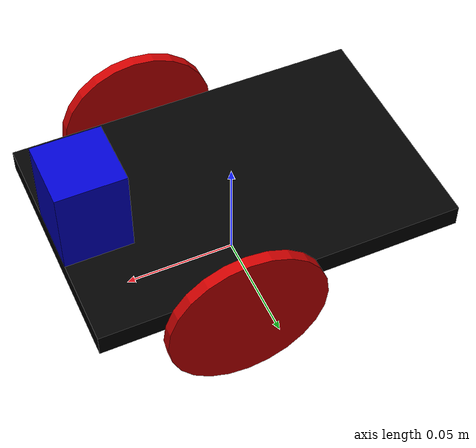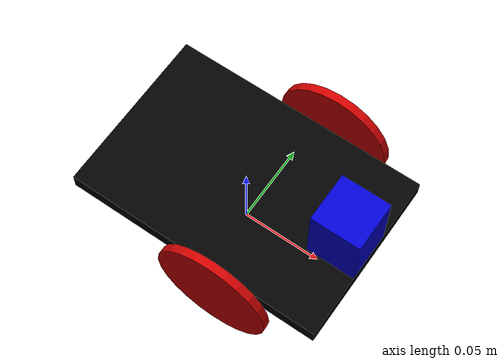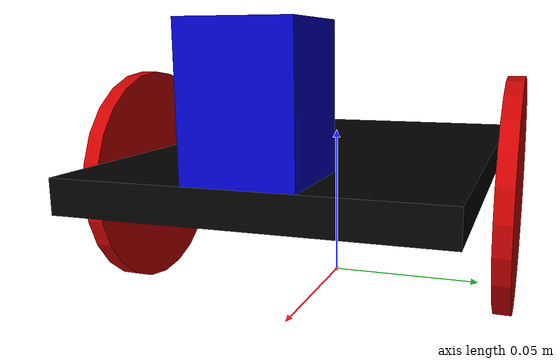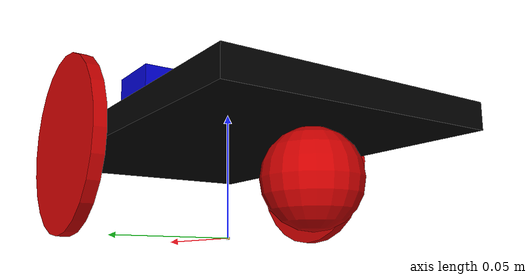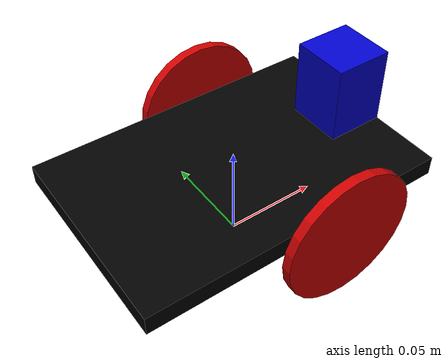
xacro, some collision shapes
<?xml version="1.0"?>
<robot xmlns:xacro="http://www.ros.org/wiki/xacro" name="newlucas">
<xacro:include filename="$(find newlucas)/urdf/pbot.gazebo" />

  <xacro:property name="base_width" value="0.106"/>
  <xacro:property name="base_len" value="0.16"/>
  <xacro:property name="wheel_radius" value="0.035"/>
  <xacro:property name="base_wheel_gap" value="0.007"/>
  <xacro:property name="wheel_separation" value="0.12"/>
  <xacro:property name="wheel_joint_offset" value="0.02"/>

  <xacro:property name="caster_wheel_radius" value="${wheel_radius/2}"/>
  <xacro:property name="caster_wheel_mass" value="0.001"/>
  <xacro:property name="caster_wheel_joint_offset" value="-0.052"/>

  <xacro:property name="laser_size_x" value="0.03"/>
  <xacro:property name="laser_size_y" value="0.03"/>
  <xacro:property name="laser_size_z" value="0.04"/>
  <xacro:property name="laser_origin_x" value="0.065"/>
  <xacro:property name="laser_origin_y" value="0"/>
  <xacro:property name="laser_origin_z" value="0.025"/>

  <xacro:property name="camera_size" value="0.02"/>
  <xacro:property name="camera_origin_x" value="0.065"/>
  <xacro:property name="camera_origin_y" value="0"/>
  <xacro:property name="camera_origin_z" value="0.025"/>

  <material name="blue">
    <color rgba="0 0 0.8 1"/>
  </material>
  <material name="black">
    <color rgba="0 0 0 1"/>
  </material>
  <material name="white">
    <color rgba="1 1 1 1"/>
  </material>
  <material name="red">
    <color rgba="0.8 0.0 0.0 1.0"/>
  </material>

  <xacro:macro name="default_inertial" params="mass">
    <inertial>
      <mass value="${mass}"/>
      <inertia ixx="1.0" ixy="0.0" ixz="0.0" iyy="1.0" iyz="0.0" izz="1.0"/>
    </inertial>
  </xacro:macro>

  <xacro:macro name="cylinder_inertia" params="m r h">
    <inertial>
      <mass value="${m}"/>
      <inertia ixx="${m*(3*r*r+h*h)/12}" ixy = "0" ixz = "0" iyy="${m*(3*r*r+h*h)/12}" iyz = "0" izz="${m*r*r/2}"/>
    </inertial>
  </xacro:macro>

  <xacro:macro name="box_inertia" params="m w h d">
    <inertial>
      <mass value="${m}"/>
      <inertia ixx="${m / 12.0 * (d*d + h*h)}" ixy="0.0" ixz="0.0" iyy="${m / 12.0 * (w*w + h*h)}" iyz="0.0" izz="${m / 12.0 * (w*w + d*d)}"/>
    </inertial>
  </xacro:macro>

  <xacro:macro name="sphere_inertia" params="m r">
    <inertial>
      <mass value="${m}"/>
      <inertia ixx="${2.0*m*(r*r)/5.0}" ixy="0.0" ixz="0.0" iyy="${2.0*m*(r*r)/5.0}" iyz="0.0" izz="${2.0*m*(r*r)/5.0}"/>
    </inertial>
  </xacro:macro>

  <link name="base_footprint">
    <xacro:box_inertia m="200" w="0.001" h="0.001" d="0.001"/>
    <visual>
        <origin xyz="0 0 0" rpy="0 0 0" />
        <geometry>
            <box size="0.001 0.001 0.001" />
        </geometry>
    </visual>
  </link>

  <link name="base_link">
    <xacro:box_inertia m="10" w="${base_len}" h="${base_width}" d="0.01"/>
    <visual>
      <geometry>
        <box size="${base_len} ${base_width} 0.01"/>
      </geometry>
      <material name="black"/>
    </visual>
    <collision>
      <geometry>
        <box size="${base_len} ${base_width} 0.01"/>
      </geometry>
    </collision>
  </link>

  <joint name="base_link_joint" type="fixed">
    <origin xyz="0 0 ${wheel_radius + 0.005}" rpy="0 0 0" />
    <parent link="base_footprint"/>
    <child link="base_link" />
  </joint>

  <xacro:macro name="wheel" params="prefix reflect">
    <link name="${prefix}_wheel">
      <visual>
        <origin xyz="0 0 0" rpy="${pi/2} 0 0"/>
        <geometry>
          <cylinder radius="${wheel_radius}" length="0.005"/>
        </geometry>
        <material name="red"/>
      </visual>
      <collision>
        <origin xyz="0 0 0" rpy="${pi/2} 0 0"/>
        <geometry>
          <cylinder radius="${wheel_radius}" length="0.005"/>
        </geometry>
      </collision>
      <xacro:cylinder_inertia m="10" r="${wheel_radius}" h="0.005"/>
    </link>

    <joint name="${prefix}_wheel_joint" type="continuous">
      <axis xyz="0 1 0" rpy="0 0 0" />
      <parent link="base_link"/>
      <child link="${prefix}_wheel"/>
      <origin xyz="${wheel_joint_offset} ${((base_width/2)+base_wheel_gap)*reflect} -0.005" rpy="0 0 0"/>
    </joint>
  </xacro:macro>

  <xacro:wheel prefix="left" reflect="1"/>
  <xacro:wheel prefix="right" reflect="-1"/>

  <!--Caster Wheel-->
  <link name="caster_wheel">
    <visual>
      <origin xyz="0 0 0" rpy="0 0 0"/>
      <geometry>
        <sphere radius="${caster_wheel_radius}"/>
      </geometry>
      <material name="red"/>
    </visual>
    <collision>
      <origin xyz="0 0 0" rpy="0 0 0"/>
      <geometry>
        <sphere radius="${caster_wheel_radius}"/>
      </geometry>
    </collision>
    <xacro:sphere_inertia m="5" r="${caster_wheel_radius}"/>
  </link>

  <joint name="caster_wheel_joint" type="continuous">
    <axis xyz="0 1 0" rpy="0 0 0" />
    <parent link="base_link"/>
    <child link="caster_wheel"/>
    <origin xyz="${caster_wheel_joint_offset} 0 -${caster_wheel_radius+0.005}" rpy="0 0 0"/>
  </joint>

  <!--Laser Scan-->
  <link name="hokuyo">
    <visual>
      <geometry>
        <mesh filename="package://newlucas/meshes/hokuyo.dae"/>
        <!--box size="${laser_size_x} ${laser_size_y} ${laser_size_z}"/-->
      </geometry>
      <material name="blue"/>
    </visual>
    <collision>
      <geometry>
        <box size="${laser_size_x} ${laser_size_y} ${laser_size_z}"/>
      </geometry>
    </collision>
    <xacro:default_inertial mass="0.02"/>
  </link>

  <joint name="hokuyo_joint" type="fixed">
    <origin xyz="${laser_origin_x} ${laser_origin_y} ${laser_origin_z}" rpy="0 0 0" />
    <parent link="base_link"/>
    <child link="hokuyo" />
  </joint>
  <!--Camera-->
  <link name="camera">
    <visual>
      <geometry>
        <box size="${camera_size} ${camera_size} ${camera_size}"/>
      </geometry>
      <material name="blue"/>
    </visual>
    <collision>
      <geometry>
        <box size="${camera_size} ${camera_size} ${camera_size}"/>
      </geometry>
    </collision>
    <xacro:default_inertial mass="0.02"/>
  </link>

  <joint name="camera_joint" type="fixed">
    <origin xyz="${camera_origin_x} ${camera_origin_y} ${camera_origin_z}" rpy="0 0 0"/>
    <parent link="base_link"/>
    <child link="camera"/>
  </joint>

</robot>
